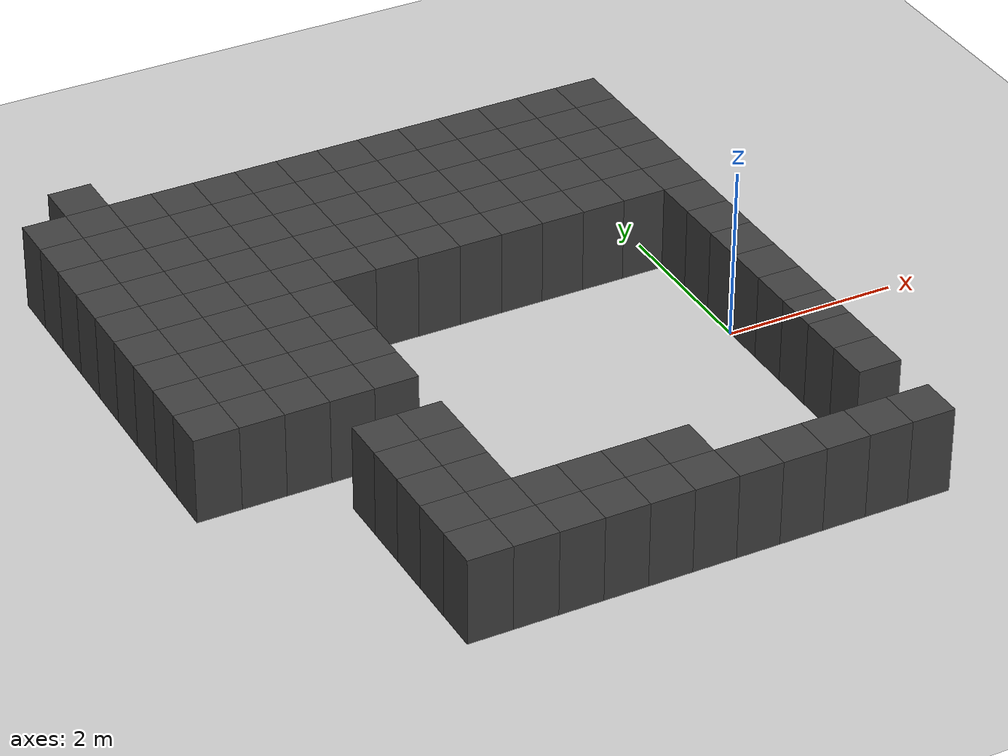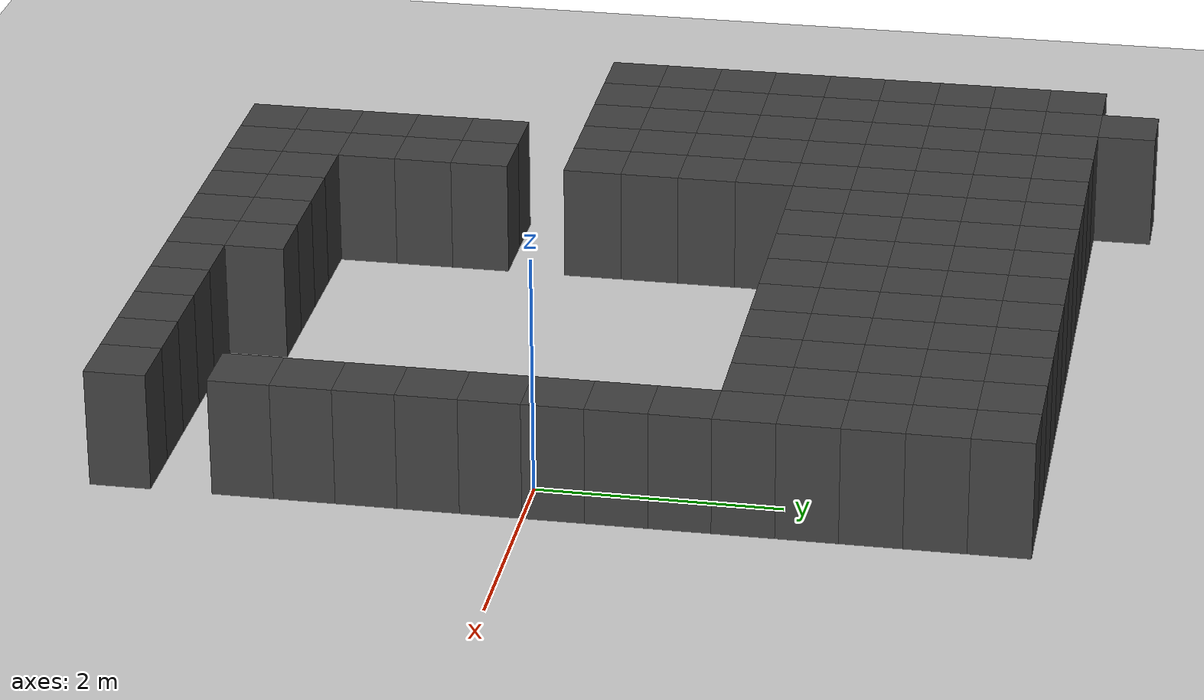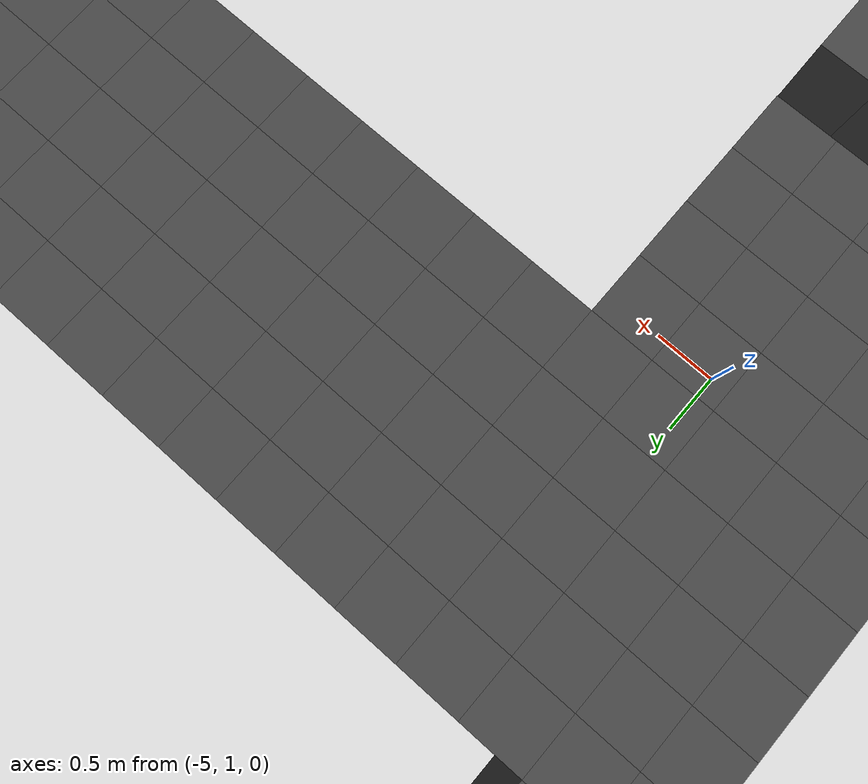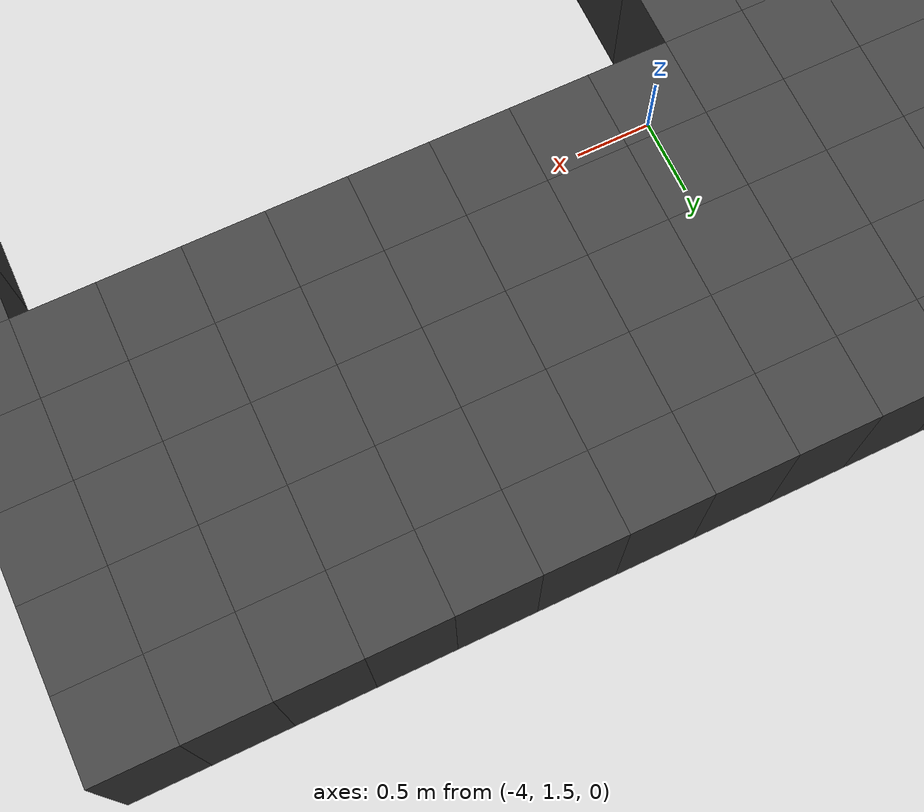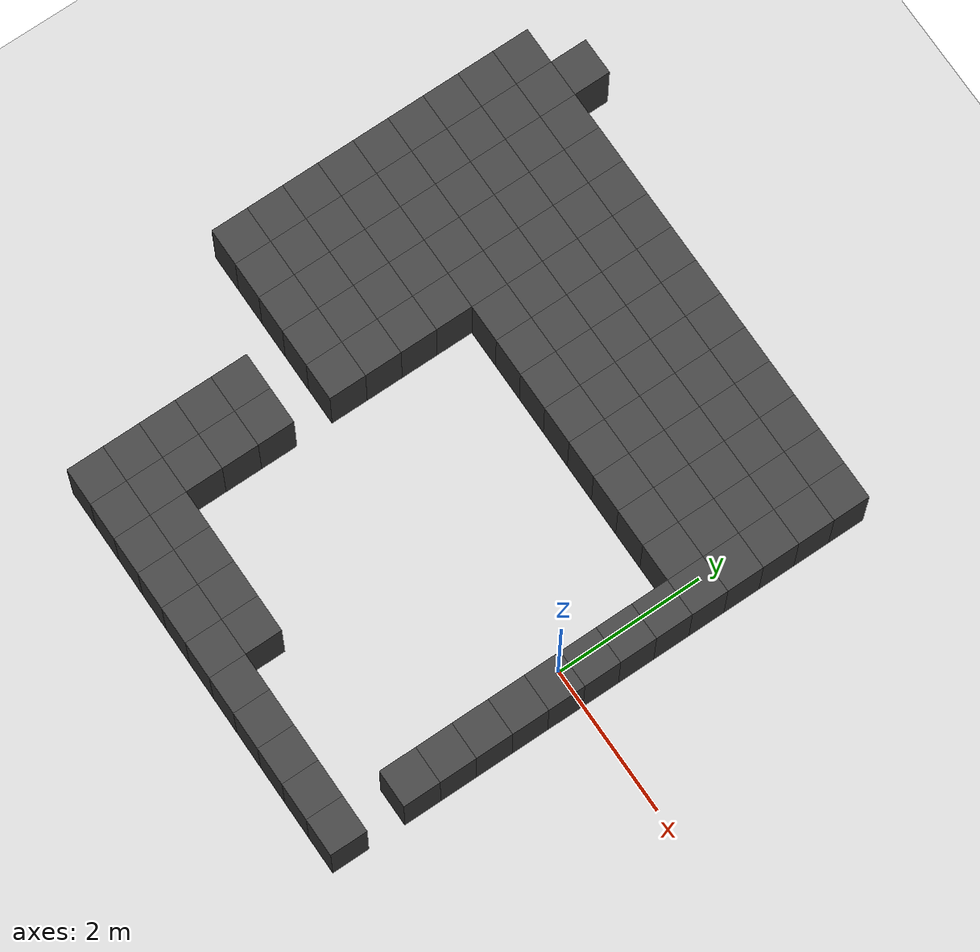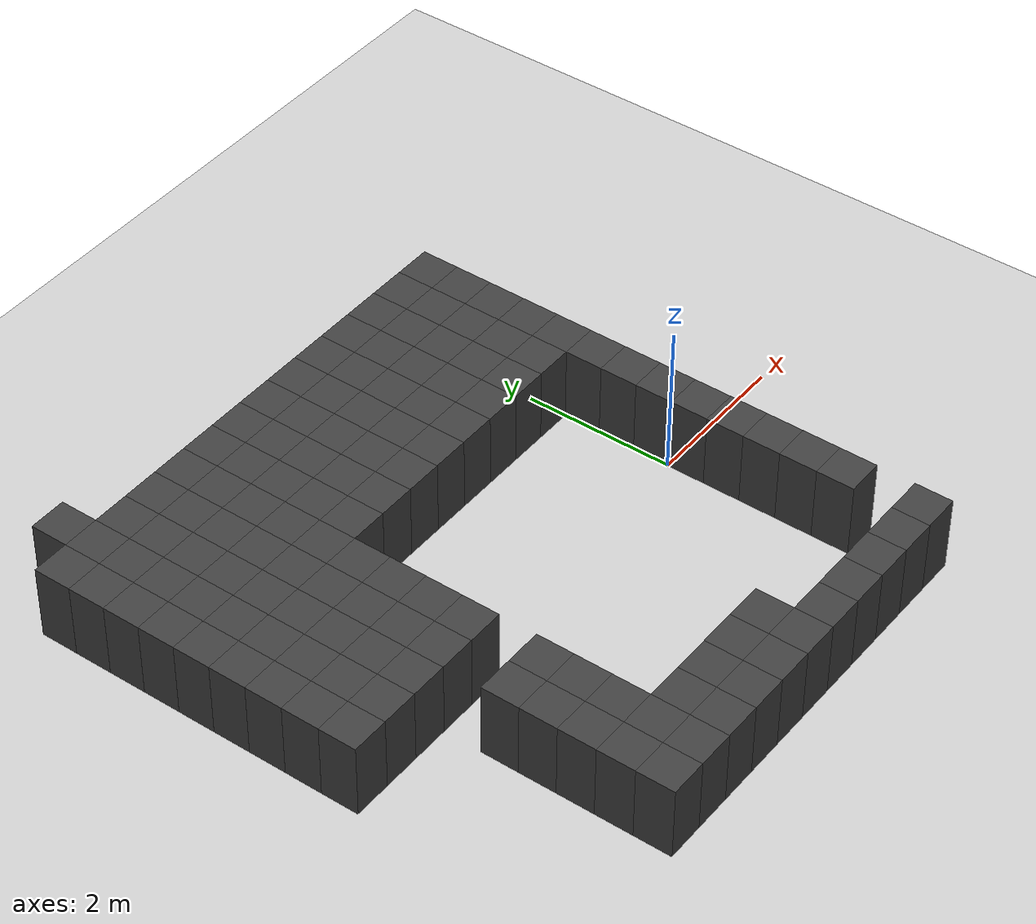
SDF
<sdf version="1.7">
 <world name="map_14510">
  <model name="ground_plane">
   <static>true</static>
   <link name="link">
    <collision name="collision">
     <geometry><plane><normal>0 0 1</normal><size>200 200</size></plane></geometry>
    </collision>
    <visual name="visual">
     <geometry><plane><normal>0 0 1</normal><size>200 200</size></plane></geometry>
     <material><ambient>0.8 0.8 0.8 1</ambient><diffuse>0.8 0.8 0.8 1</diffuse></material>
    </visual>
   </link>
  </model>
  <model name="maze_environment">
   <static>true</static>
   <link name="wall_524">
    <pose>-5.750 4.250 0.500 0 0 0</pose>
    <collision name="col"><geometry><box><size>0.5 0.5 1.0</size></box></geometry></collision>
    <visual name="vis">
     <geometry><box><size>0.5 0.5 1.0</size></box></geometry>
     <material><ambient>0.15 0.15 0.15 1</ambient><diffuse>0.25 0.25 0.25 1</diffuse></material>
    </visual>
   </link>
   <link name="wall_563">
    <pose>-6.250 3.750 0.500 0 0 0</pose>
    <collision name="col"><geometry><box><size>0.5 0.5 1.0</size></box></geometry></collision>
    <visual name="vis">
     <geometry><box><size>0.5 0.5 1.0</size></box></geometry>
     <material><ambient>0.15 0.15 0.15 1</ambient><diffuse>0.25 0.25 0.25 1</diffuse></material>
    </visual>
   </link>
   <link name="wall_564">
    <pose>-5.750 3.750 0.500 0 0 0</pose>
    <collision name="col"><geometry><box><size>0.5 0.5 1.0</size></box></geometry></collision>
    <visual name="vis">
     <geometry><box><size>0.5 0.5 1.0</size></box></geometry>
     <material><ambient>0.15 0.15 0.15 1</ambient><diffuse>0.25 0.25 0.25 1</diffuse></material>
    </visual>
   </link>
   <link name="wall_565">
    <pose>-5.250 3.750 0.500 0 0 0</pose>
    <collision name="col"><geometry><box><size>0.5 0.5 1.0</size></box></geometry></collision>
    <visual name="vis">
     <geometry><box><size>0.5 0.5 1.0</size></box></geometry>
     <material><ambient>0.15 0.15 0.15 1</ambient><diffuse>0.25 0.25 0.25 1</diffuse></material>
    </visual>
   </link>
   <link name="wall_566">
    <pose>-4.750 3.750 0.500 0 0 0</pose>
    <collision name="col"><geometry><box><size>0.5 0.5 1.0</size></box></geometry></collision>
    <visual name="vis">
     <geometry><box><size>0.5 0.5 1.0</size></box></geometry>
     <material><ambient>0.15 0.15 0.15 1</ambient><diffuse>0.25 0.25 0.25 1</diffuse></material>
    </visual>
   </link>
   <link name="wall_567">
    <pose>-4.250 3.750 0.500 0 0 0</pose>
    <collision name="col"><geometry><box><size>0.5 0.5 1.0</size></box></geometry></collision>
    <visual name="vis">
     <geometry><box><size>0.5 0.5 1.0</size></box></geometry>
     <material><ambient>0.15 0.15 0.15 1</ambient><diffuse>0.25 0.25 0.25 1</diffuse></material>
    </visual>
   </link>
   <link name="wall_568">
    <pose>-3.750 3.750 0.500 0 0 0</pose>
    <collision name="col"><geometry><box><size>0.5 0.5 1.0</size></box></geometry></collision>
    <visual name="vis">
     <geometry><box><size>0.5 0.5 1.0</size></box></geometry>
     <material><ambient>0.15 0.15 0.15 1</ambient><diffuse>0.25 0.25 0.25 1</diffuse></material>
    </visual>
   </link>
   <link name="wall_569">
    <pose>-3.250 3.750 0.500 0 0 0</pose>
    <collision name="col"><geometry><box><size>0.5 0.5 1.0</size></box></geometry></collision>
    <visual name="vis">
     <geometry><box><size>0.5 0.5 1.0</size></box></geometry>
     <material><ambient>0.15 0.15 0.15 1</ambient><diffuse>0.25 0.25 0.25 1</diffuse></material>
    </visual>
   </link>
   <link name="wall_570">
    <pose>-2.750 3.750 0.500 0 0 0</pose>
    <collision name="col"><geometry><box><size>0.5 0.5 1.0</size></box></geometry></collision>
    <visual name="vis">
     <geometry><box><size>0.5 0.5 1.0</size></box></geometry>
     <material><ambient>0.15 0.15 0.15 1</ambient><diffuse>0.25 0.25 0.25 1</diffuse></material>
    </visual>
   </link>
   <link name="wall_571">
    <pose>-2.250 3.750 0.500 0 0 0</pose>
    <collision name="col"><geometry><box><size>0.5 0.5 1.0</size></box></geometry></collision>
    <visual name="vis">
     <geometry><box><size>0.5 0.5 1.0</size></box></geometry>
     <material><ambient>0.15 0.15 0.15 1</ambient><diffuse>0.25 0.25 0.25 1</diffuse></material>
    </visual>
   </link>
   <link name="wall_572">
    <pose>-1.750 3.750 0.500 0 0 0</pose>
    <collision name="col"><geometry><box><size>0.5 0.5 1.0</size></box></geometry></collision>
    <visual name="vis">
     <geometry><box><size>0.5 0.5 1.0</size></box></geometry>
     <material><ambient>0.15 0.15 0.15 1</ambient><diffuse>0.25 0.25 0.25 1</diffuse></material>
    </visual>
   </link>
   <link name="wall_573">
    <pose>-1.250 3.750 0.500 0 0 0</pose>
    <collision name="col"><geometry><box><size>0.5 0.5 1.0</size></box></geometry></collision>
    <visual name="vis">
     <geometry><box><size>0.5 0.5 1.0</size></box></geometry>
     <material><ambient>0.15 0.15 0.15 1</ambient><diffuse>0.25 0.25 0.25 1</diffuse></material>
    </visual>
   </link>
   <link name="wall_574">
    <pose>-0.750 3.750 0.500 0 0 0</pose>
    <collision name="col"><geometry><box><size>0.5 0.5 1.0</size></box></geometry></collision>
    <visual name="vis">
     <geometry><box><size>0.5 0.5 1.0</size></box></geometry>
     <material><ambient>0.15 0.15 0.15 1</ambient><diffuse>0.25 0.25 0.25 1</diffuse></material>
    </visual>
   </link>
   <link name="wall_575">
    <pose>-0.250 3.750 0.500 0 0 0</pose>
    <collision name="col"><geometry><box><size>0.5 0.5 1.0</size></box></geometry></collision>
    <visual name="vis">
     <geometry><box><size>0.5 0.5 1.0</size></box></geometry>
     <material><ambient>0.15 0.15 0.15 1</ambient><diffuse>0.25 0.25 0.25 1</diffuse></material>
    </visual>
   </link>
   <link name="wall_576">
    <pose>0.250 3.750 0.500 0 0 0</pose>
    <collision name="col"><geometry><box><size>0.5 0.5 1.0</size></box></geometry></collision>
    <visual name="vis">
     <geometry><box><size>0.5 0.5 1.0</size></box></geometry>
     <material><ambient>0.15 0.15 0.15 1</ambient><diffuse>0.25 0.25 0.25 1</diffuse></material>
    </visual>
   </link>
   <link name="wall_605">
    <pose>-6.250 3.250 0.500 0 0 0</pose>
    <collision name="col"><geometry><box><size>0.5 0.5 1.0</size></box></geometry></collision>
    <visual name="vis">
     <geometry><box><size>0.5 0.5 1.0</size></box></geometry>
     <material><ambient>0.15 0.15 0.15 1</ambient><diffuse>0.25 0.25 0.25 1</diffuse></material>
    </visual>
   </link>
   <link name="wall_606">
    <pose>-5.750 3.250 0.500 0 0 0</pose>
    <collision name="col"><geometry><box><size>0.5 0.5 1.0</size></box></geometry></collision>
    <visual name="vis">
     <geometry><box><size>0.5 0.5 1.0</size></box></geometry>
     <material><ambient>0.15 0.15 0.15 1</ambient><diffuse>0.25 0.25 0.25 1</diffuse></material>
    </visual>
   </link>
   <link name="wall_607">
    <pose>-5.250 3.250 0.500 0 0 0</pose>
    <collision name="col"><geometry><box><size>0.5 0.5 1.0</size></box></geometry></collision>
    <visual name="vis">
     <geometry><box><size>0.5 0.5 1.0</size></box></geometry>
     <material><ambient>0.15 0.15 0.15 1</ambient><diffuse>0.25 0.25 0.25 1</diffuse></material>
    </visual>
   </link>
   <link name="wall_608">
    <pose>-4.750 3.250 0.500 0 0 0</pose>
    <collision name="col"><geometry><box><size>0.5 0.5 1.0</size></box></geometry></collision>
    <visual name="vis">
     <geometry><box><size>0.5 0.5 1.0</size></box></geometry>
     <material><ambient>0.15 0.15 0.15 1</ambient><diffuse>0.25 0.25 0.25 1</diffuse></material>
    </visual>
   </link>
   <link name="wall_609">
    <pose>-4.250 3.250 0.500 0 0 0</pose>
    <collision name="col"><geometry><box><size>0.5 0.5 1.0</size></box></geometry></collision>
    <visual name="vis">
     <geometry><box><size>0.5 0.5 1.0</size></box></geometry>
     <material><ambient>0.15 0.15 0.15 1</ambient><diffuse>0.25 0.25 0.25 1</diffuse></material>
    </visual>
   </link>
   <link name="wall_610">
    <pose>-3.750 3.250 0.500 0 0 0</pose>
    <collision name="col"><geometry><box><size>0.5 0.5 1.0</size></box></geometry></collision>
    <visual name="vis">
     <geometry><box><size>0.5 0.5 1.0</size></box></geometry>
     <material><ambient>0.15 0.15 0.15 1</ambient><diffuse>0.25 0.25 0.25 1</diffuse></material>
    </visual>
   </link>
   <link name="wall_611">
    <pose>-3.250 3.250 0.500 0 0 0</pose>
    <collision name="col"><geometry><box><size>0.5 0.5 1.0</size></box></geometry></collision>
    <visual name="vis">
     <geometry><box><size>0.5 0.5 1.0</size></box></geometry>
     <material><ambient>0.15 0.15 0.15 1</ambient><diffuse>0.25 0.25 0.25 1</diffuse></material>
    </visual>
   </link>
   <link name="wall_612">
    <pose>-2.750 3.250 0.500 0 0 0</pose>
    <collision name="col"><geometry><box><size>0.5 0.5 1.0</size></box></geometry></collision>
    <visual name="vis">
     <geometry><box><size>0.5 0.5 1.0</size></box></geometry>
     <material><ambient>0.15 0.15 0.15 1</ambient><diffuse>0.25 0.25 0.25 1</diffuse></material>
    </visual>
   </link>
   <link name="wall_613">
    <pose>-2.250 3.250 0.500 0 0 0</pose>
    <collision name="col"><geometry><box><size>0.5 0.5 1.0</size></box></geometry></collision>
    <visual name="vis">
     <geometry><box><size>0.5 0.5 1.0</size></box></geometry>
     <material><ambient>0.15 0.15 0.15 1</ambient><diffuse>0.25 0.25 0.25 1</diffuse></material>
    </visual>
   </link>
   <link name="wall_614">
    <pose>-1.750 3.250 0.500 0 0 0</pose>
    <collision name="col"><geometry><box><size>0.5 0.5 1.0</size></box></geometry></collision>
    <visual name="vis">
     <geometry><box><size>0.5 0.5 1.0</size></box></geometry>
     <material><ambient>0.15 0.15 0.15 1</ambient><diffuse>0.25 0.25 0.25 1</diffuse></material>
    </visual>
   </link>
   <link name="wall_615">
    <pose>-1.250 3.250 0.500 0 0 0</pose>
    <collision name="col"><geometry><box><size>0.5 0.5 1.0</size></box></geometry></collision>
    <visual name="vis">
     <geometry><box><size>0.5 0.5 1.0</size></box></geometry>
     <material><ambient>0.15 0.15 0.15 1</ambient><diffuse>0.25 0.25 0.25 1</diffuse></material>
    </visual>
   </link>
   <link name="wall_616">
    <pose>-0.750 3.250 0.500 0 0 0</pose>
    <collision name="col"><geometry><box><size>0.5 0.5 1.0</size></box></geometry></collision>
    <visual name="vis">
     <geometry><box><size>0.5 0.5 1.0</size></box></geometry>
     <material><ambient>0.15 0.15 0.15 1</ambient><diffuse>0.25 0.25 0.25 1</diffuse></material>
    </visual>
   </link>
   <link name="wall_617">
    <pose>-0.250 3.250 0.500 0 0 0</pose>
    <collision name="col"><geometry><box><size>0.5 0.5 1.0</size></box></geometry></collision>
    <visual name="vis">
     <geometry><box><size>0.5 0.5 1.0</size></box></geometry>
     <material><ambient>0.15 0.15 0.15 1</ambient><diffuse>0.25 0.25 0.25 1</diffuse></material>
    </visual>
   </link>
   <link name="wall_618">
    <pose>0.250 3.250 0.500 0 0 0</pose>
    <collision name="col"><geometry><box><size>0.5 0.5 1.0</size></box></geometry></collision>
    <visual name="vis">
     <geometry><box><size>0.5 0.5 1.0</size></box></geometry>
     <material><ambient>0.15 0.15 0.15 1</ambient><diffuse>0.25 0.25 0.25 1</diffuse></material>
    </visual>
   </link>
   <link name="wall_645">
    <pose>-6.250 2.750 0.500 0 0 0</pose>
    <collision name="col"><geometry><box><size>0.5 0.5 1.0</size></box></geometry></collision>
    <visual name="vis">
     <geometry><box><size>0.5 0.5 1.0</size></box></geometry>
     <material><ambient>0.15 0.15 0.15 1</ambient><diffuse>0.25 0.25 0.25 1</diffuse></material>
    </visual>
   </link>
   <link name="wall_646">
    <pose>-5.750 2.750 0.500 0 0 0</pose>
    <collision name="col"><geometry><box><size>0.5 0.5 1.0</size></box></geometry></collision>
    <visual name="vis">
     <geometry><box><size>0.5 0.5 1.0</size></box></geometry>
     <material><ambient>0.15 0.15 0.15 1</ambient><diffuse>0.25 0.25 0.25 1</diffuse></material>
    </visual>
   </link>
   <link name="wall_647">
    <pose>-5.250 2.750 0.500 0 0 0</pose>
    <collision name="col"><geometry><box><size>0.5 0.5 1.0</size></box></geometry></collision>
    <visual name="vis">
     <geometry><box><size>0.5 0.5 1.0</size></box></geometry>
     <material><ambient>0.15 0.15 0.15 1</ambient><diffuse>0.25 0.25 0.25 1</diffuse></material>
    </visual>
   </link>
   <link name="wall_648">
    <pose>-4.750 2.750 0.500 0 0 0</pose>
    <collision name="col"><geometry><box><size>0.5 0.5 1.0</size></box></geometry></collision>
    <visual name="vis">
     <geometry><box><size>0.5 0.5 1.0</size></box></geometry>
     <material><ambient>0.15 0.15 0.15 1</ambient><diffuse>0.25 0.25 0.25 1</diffuse></material>
    </visual>
   </link>
   <link name="wall_649">
    <pose>-4.250 2.750 0.500 0 0 0</pose>
    <collision name="col"><geometry><box><size>0.5 0.5 1.0</size></box></geometry></collision>
    <visual name="vis">
     <geometry><box><size>0.5 0.5 1.0</size></box></geometry>
     <material><ambient>0.15 0.15 0.15 1</ambient><diffuse>0.25 0.25 0.25 1</diffuse></material>
    </visual>
   </link>
   <link name="wall_650">
    <pose>-3.750 2.750 0.500 0 0 0</pose>
    <collision name="col"><geometry><box><size>0.5 0.5 1.0</size></box></geometry></collision>
    <visual name="vis">
     <geometry><box><size>0.5 0.5 1.0</size></box></geometry>
     <material><ambient>0.15 0.15 0.15 1</ambient><diffuse>0.25 0.25 0.25 1</diffuse></material>
    </visual>
   </link>
   <link name="wall_651">
    <pose>-3.250 2.750 0.500 0 0 0</pose>
    <collision name="col"><geometry><box><size>0.5 0.5 1.0</size></box></geometry></collision>
    <visual name="vis">
     <geometry><box><size>0.5 0.5 1.0</size></box></geometry>
     <material><ambient>0.15 0.15 0.15 1</ambient><diffuse>0.25 0.25 0.25 1</diffuse></material>
    </visual>
   </link>
   <link name="wall_652">
    <pose>-2.750 2.750 0.500 0 0 0</pose>
    <collision name="col"><geometry><box><size>0.5 0.5 1.0</size></box></geometry></collision>
    <visual name="vis">
     <geometry><box><size>0.5 0.5 1.0</size></box></geometry>
     <material><ambient>0.15 0.15 0.15 1</ambient><diffuse>0.25 0.25 0.25 1</diffuse></material>
    </visual>
   </link>
   <link name="wall_653">
    <pose>-2.250 2.750 0.500 0 0 0</pose>
    <collision name="col"><geometry><box><size>0.5 0.5 1.0</size></box></geometry></collision>
    <visual name="vis">
     <geometry><box><size>0.5 0.5 1.0</size></box></geometry>
     <material><ambient>0.15 0.15 0.15 1</ambient><diffuse>0.25 0.25 0.25 1</diffuse></material>
    </visual>
   </link>
   <link name="wall_654">
    <pose>-1.750 2.750 0.500 0 0 0</pose>
    <collision name="col"><geometry><box><size>0.5 0.5 1.0</size></box></geometry></collision>
    <visual name="vis">
     <geometry><box><size>0.5 0.5 1.0</size></box></geometry>
     <material><ambient>0.15 0.15 0.15 1</ambient><diffuse>0.25 0.25 0.25 1</diffuse></material>
    </visual>
   </link>
   <link name="wall_655">
    <pose>-1.250 2.750 0.500 0 0 0</pose>
    <collision name="col"><geometry><box><size>0.5 0.5 1.0</size></box></geometry></collision>
    <visual name="vis">
     <geometry><box><size>0.5 0.5 1.0</size></box></geometry>
     <material><ambient>0.15 0.15 0.15 1</ambient><diffuse>0.25 0.25 0.25 1</diffuse></material>
    </visual>
   </link>
   <link name="wall_656">
    <pose>-0.750 2.750 0.500 0 0 0</pose>
    <collision name="col"><geometry><box><size>0.5 0.5 1.0</size></box></geometry></collision>
    <visual name="vis">
     <geometry><box><size>0.5 0.5 1.0</size></box></geometry>
     <material><ambient>0.15 0.15 0.15 1</ambient><diffuse>0.25 0.25 0.25 1</diffuse></material>
    </visual>
   </link>
   <link name="wall_657">
    <pose>-0.250 2.750 0.500 0 0 0</pose>
    <collision name="col"><geometry><box><size>0.5 0.5 1.0</size></box></geometry></collision>
    <visual name="vis">
     <geometry><box><size>0.5 0.5 1.0</size></box></geometry>
     <material><ambient>0.15 0.15 0.15 1</ambient><diffuse>0.25 0.25 0.25 1</diffuse></material>
    </visual>
   </link>
   <link name="wall_658">
    <pose>0.250 2.750 0.500 0 0 0</pose>
    <collision name="col"><geometry><box><size>0.5 0.5 1.0</size></box></geometry></collision>
    <visual name="vis">
     <geometry><box><size>0.5 0.5 1.0</size></box></geometry>
     <material><ambient>0.15 0.15 0.15 1</ambient><diffuse>0.25 0.25 0.25 1</diffuse></material>
    </visual>
   </link>
   <link name="wall_683">
    <pose>-6.250 2.250 0.500 0 0 0</pose>
    <collision name="col"><geometry><box><size>0.5 0.5 1.0</size></box></geometry></collision>
    <visual name="vis">
     <geometry><box><size>0.5 0.5 1.0</size></box></geometry>
     <material><ambient>0.15 0.15 0.15 1</ambient><diffuse>0.25 0.25 0.25 1</diffuse></material>
    </visual>
   </link>
   <link name="wall_684">
    <pose>-5.750 2.250 0.500 0 0 0</pose>
    <collision name="col"><geometry><box><size>0.5 0.5 1.0</size></box></geometry></collision>
    <visual name="vis">
     <geometry><box><size>0.5 0.5 1.0</size></box></geometry>
     <material><ambient>0.15 0.15 0.15 1</ambient><diffuse>0.25 0.25 0.25 1</diffuse></material>
    </visual>
   </link>
   <link name="wall_685">
    <pose>-5.250 2.250 0.500 0 0 0</pose>
    <collision name="col"><geometry><box><size>0.5 0.5 1.0</size></box></geometry></collision>
    <visual name="vis">
     <geometry><box><size>0.5 0.5 1.0</size></box></geometry>
     <material><ambient>0.15 0.15 0.15 1</ambient><diffuse>0.25 0.25 0.25 1</diffuse></material>
    </visual>
   </link>
   <link name="wall_686">
    <pose>-4.750 2.250 0.500 0 0 0</pose>
    <collision name="col"><geometry><box><size>0.5 0.5 1.0</size></box></geometry></collision>
    <visual name="vis">
     <geometry><box><size>0.5 0.5 1.0</size></box></geometry>
     <material><ambient>0.15 0.15 0.15 1</ambient><diffuse>0.25 0.25 0.25 1</diffuse></material>
    </visual>
   </link>
   <link name="wall_687">
    <pose>-4.250 2.250 0.500 0 0 0</pose>
    <collision name="col"><geometry><box><size>0.5 0.5 1.0</size></box></geometry></collision>
    <visual name="vis">
     <geometry><box><size>0.5 0.5 1.0</size></box></geometry>
     <material><ambient>0.15 0.15 0.15 1</ambient><diffuse>0.25 0.25 0.25 1</diffuse></material>
    </visual>
   </link>
   <link name="wall_688">
    <pose>-3.750 2.250 0.500 0 0 0</pose>
    <collision name="col"><geometry><box><size>0.5 0.5 1.0</size></box></geometry></collision>
    <visual name="vis">
     <geometry><box><size>0.5 0.5 1.0</size></box></geometry>
     <material><ambient>0.15 0.15 0.15 1</ambient><diffuse>0.25 0.25 0.25 1</diffuse></material>
    </visual>
   </link>
   <link name="wall_689">
    <pose>-3.250 2.250 0.500 0 0 0</pose>
    <collision name="col"><geometry><box><size>0.5 0.5 1.0</size></box></geometry></collision>
    <visual name="vis">
     <geometry><box><size>0.5 0.5 1.0</size></box></geometry>
     <material><ambient>0.15 0.15 0.15 1</ambient><diffuse>0.25 0.25 0.25 1</diffuse></material>
    </visual>
   </link>
   <link name="wall_690">
    <pose>-2.750 2.250 0.500 0 0 0</pose>
    <collision name="col"><geometry><box><size>0.5 0.5 1.0</size></box></geometry></collision>
    <visual name="vis">
     <geometry><box><size>0.5 0.5 1.0</size></box></geometry>
     <material><ambient>0.15 0.15 0.15 1</ambient><diffuse>0.25 0.25 0.25 1</diffuse></material>
    </visual>
   </link>
   <link name="wall_691">
    <pose>-2.250 2.250 0.500 0 0 0</pose>
    <collision name="col"><geometry><box><size>0.5 0.5 1.0</size></box></geometry></collision>
    <visual name="vis">
     <geometry><box><size>0.5 0.5 1.0</size></box></geometry>
     <material><ambient>0.15 0.15 0.15 1</ambient><diffuse>0.25 0.25 0.25 1</diffuse></material>
    </visual>
   </link>
   <link name="wall_692">
    <pose>-1.750 2.250 0.500 0 0 0</pose>
    <collision name="col"><geometry><box><size>0.5 0.5 1.0</size></box></geometry></collision>
    <visual name="vis">
     <geometry><box><size>0.5 0.5 1.0</size></box></geometry>
     <material><ambient>0.15 0.15 0.15 1</ambient><diffuse>0.25 0.25 0.25 1</diffuse></material>
    </visual>
   </link>
   <link name="wall_693">
    <pose>-1.250 2.250 0.500 0 0 0</pose>
    <collision name="col"><geometry><box><size>0.5 0.5 1.0</size></box></geometry></collision>
    <visual name="vis">
     <geometry><box><size>0.5 0.5 1.0</size></box></geometry>
     <material><ambient>0.15 0.15 0.15 1</ambient><diffuse>0.25 0.25 0.25 1</diffuse></material>
    </visual>
   </link>
   <link name="wall_694">
    <pose>-0.750 2.250 0.500 0 0 0</pose>
    <collision name="col"><geometry><box><size>0.5 0.5 1.0</size></box></geometry></collision>
    <visual name="vis">
     <geometry><box><size>0.5 0.5 1.0</size></box></geometry>
     <material><ambient>0.15 0.15 0.15 1</ambient><diffuse>0.25 0.25 0.25 1</diffuse></material>
    </visual>
   </link>
   <link name="wall_695">
    <pose>-0.250 2.250 0.500 0 0 0</pose>
    <collision name="col"><geometry><box><size>0.5 0.5 1.0</size></box></geometry></collision>
    <visual name="vis">
     <geometry><box><size>0.5 0.5 1.0</size></box></geometry>
     <material><ambient>0.15 0.15 0.15 1</ambient><diffuse>0.25 0.25 0.25 1</diffuse></material>
    </visual>
   </link>
   <link name="wall_696">
    <pose>0.250 2.250 0.500 0 0 0</pose>
    <collision name="col"><geometry><box><size>0.5 0.5 1.0</size></box></geometry></collision>
    <visual name="vis">
     <geometry><box><size>0.5 0.5 1.0</size></box></geometry>
     <material><ambient>0.15 0.15 0.15 1</ambient><diffuse>0.25 0.25 0.25 1</diffuse></material>
    </visual>
   </link>
   <link name="wall_721">
    <pose>-6.250 1.750 0.500 0 0 0</pose>
    <collision name="col"><geometry><box><size>0.5 0.5 1.0</size></box></geometry></collision>
    <visual name="vis">
     <geometry><box><size>0.5 0.5 1.0</size></box></geometry>
     <material><ambient>0.15 0.15 0.15 1</ambient><diffuse>0.25 0.25 0.25 1</diffuse></material>
    </visual>
   </link>
   <link name="wall_722">
    <pose>-5.750 1.750 0.500 0 0 0</pose>
    <collision name="col"><geometry><box><size>0.5 0.5 1.0</size></box></geometry></collision>
    <visual name="vis">
     <geometry><box><size>0.5 0.5 1.0</size></box></geometry>
     <material><ambient>0.15 0.15 0.15 1</ambient><diffuse>0.25 0.25 0.25 1</diffuse></material>
    </visual>
   </link>
   <link name="wall_723">
    <pose>-5.250 1.750 0.500 0 0 0</pose>
    <collision name="col"><geometry><box><size>0.5 0.5 1.0</size></box></geometry></collision>
    <visual name="vis">
     <geometry><box><size>0.5 0.5 1.0</size></box></geometry>
     <material><ambient>0.15 0.15 0.15 1</ambient><diffuse>0.25 0.25 0.25 1</diffuse></material>
    </visual>
   </link>
   <link name="wall_724">
    <pose>-4.750 1.750 0.500 0 0 0</pose>
    <collision name="col"><geometry><box><size>0.5 0.5 1.0</size></box></geometry></collision>
    <visual name="vis">
     <geometry><box><size>0.5 0.5 1.0</size></box></geometry>
     <material><ambient>0.15 0.15 0.15 1</ambient><diffuse>0.25 0.25 0.25 1</diffuse></material>
    </visual>
   </link>
   <link name="wall_725">
    <pose>-4.250 1.750 0.500 0 0 0</pose>
    <collision name="col"><geometry><box><size>0.5 0.5 1.0</size></box></geometry></collision>
    <visual name="vis">
     <geometry><box><size>0.5 0.5 1.0</size></box></geometry>
     <material><ambient>0.15 0.15 0.15 1</ambient><diffuse>0.25 0.25 0.25 1</diffuse></material>
    </visual>
   </link>
   <link name="wall_726">
    <pose>-3.750 1.750 0.500 0 0 0</pose>
    <collision name="col"><geometry><box><size>0.5 0.5 1.0</size></box></geometry></collision>
    <visual name="vis">
     <geometry><box><size>0.5 0.5 1.0</size></box></geometry>
     <material><ambient>0.15 0.15 0.15 1</ambient><diffuse>0.25 0.25 0.25 1</diffuse></material>
    </visual>
   </link>
   <link name="wall_727">
    <pose>-3.250 1.750 0.500 0 0 0</pose>
    <collision name="col"><geometry><box><size>0.5 0.5 1.0</size></box></geometry></collision>
    <visual name="vis">
     <geometry><box><size>0.5 0.5 1.0</size></box></geometry>
     <material><ambient>0.15 0.15 0.15 1</ambient><diffuse>0.25 0.25 0.25 1</diffuse></material>
    </visual>
   </link>
   <link name="wall_728">
    <pose>-2.750 1.750 0.500 0 0 0</pose>
    <collision name="col"><geometry><box><size>0.5 0.5 1.0</size></box></geometry></collision>
    <visual name="vis">
     <geometry><box><size>0.5 0.5 1.0</size></box></geometry>
     <material><ambient>0.15 0.15 0.15 1</ambient><diffuse>0.25 0.25 0.25 1</diffuse></material>
    </visual>
   </link>
   <link name="wall_729">
    <pose>-2.250 1.750 0.500 0 0 0</pose>
    <collision name="col"><geometry><box><size>0.5 0.5 1.0</size></box></geometry></collision>
    <visual name="vis">
     <geometry><box><size>0.5 0.5 1.0</size></box></geometry>
     <material><ambient>0.15 0.15 0.15 1</ambient><diffuse>0.25 0.25 0.25 1</diffuse></material>
    </visual>
   </link>
   <link name="wall_730">
    <pose>-1.750 1.750 0.500 0 0 0</pose>
    <collision name="col"><geometry><box><size>0.5 0.5 1.0</size></box></geometry></collision>
    <visual name="vis">
     <geometry><box><size>0.5 0.5 1.0</size></box></geometry>
     <material><ambient>0.15 0.15 0.15 1</ambient><diffuse>0.25 0.25 0.25 1</diffuse></material>
    </visual>
   </link>
   <link name="wall_731">
    <pose>-1.250 1.750 0.500 0 0 0</pose>
    <collision name="col"><geometry><box><size>0.5 0.5 1.0</size></box></geometry></collision>
    <visual name="vis">
     <geometry><box><size>0.5 0.5 1.0</size></box></geometry>
     <material><ambient>0.15 0.15 0.15 1</ambient><diffuse>0.25 0.25 0.25 1</diffuse></material>
    </visual>
   </link>
   <link name="wall_732">
    <pose>-0.750 1.750 0.500 0 0 0</pose>
    <collision name="col"><geometry><box><size>0.5 0.5 1.0</size></box></geometry></collision>
    <visual name="vis">
     <geometry><box><size>0.5 0.5 1.0</size></box></geometry>
     <material><ambient>0.15 0.15 0.15 1</ambient><diffuse>0.25 0.25 0.25 1</diffuse></material>
    </visual>
   </link>
   <link name="wall_733">
    <pose>-0.250 1.750 0.500 0 0 0</pose>
    <collision name="col"><geometry><box><size>0.5 0.5 1.0</size></box></geometry></collision>
    <visual name="vis">
     <geometry><box><size>0.5 0.5 1.0</size></box></geometry>
     <material><ambient>0.15 0.15 0.15 1</ambient><diffuse>0.25 0.25 0.25 1</diffuse></material>
    </visual>
   </link>
   <link name="wall_734">
    <pose>0.250 1.750 0.500 0 0 0</pose>
    <collision name="col"><geometry><box><size>0.5 0.5 1.0</size></box></geometry></collision>
    <visual name="vis">
     <geometry><box><size>0.5 0.5 1.0</size></box></geometry>
     <material><ambient>0.15 0.15 0.15 1</ambient><diffuse>0.25 0.25 0.25 1</diffuse></material>
    </visual>
   </link>
   <link name="wall_759">
    <pose>-6.250 1.250 0.500 0 0 0</pose>
    <collision name="col"><geometry><box><size>0.5 0.5 1.0</size></box></geometry></collision>
    <visual name="vis">
     <geometry><box><size>0.5 0.5 1.0</size></box></geometry>
     <material><ambient>0.15 0.15 0.15 1</ambient><diffuse>0.25 0.25 0.25 1</diffuse></material>
    </visual>
   </link>
   <link name="wall_760">
    <pose>-5.750 1.250 0.500 0 0 0</pose>
    <collision name="col"><geometry><box><size>0.5 0.5 1.0</size></box></geometry></collision>
    <visual name="vis">
     <geometry><box><size>0.5 0.5 1.0</size></box></geometry>
     <material><ambient>0.15 0.15 0.15 1</ambient><diffuse>0.25 0.25 0.25 1</diffuse></material>
    </visual>
   </link>
   <link name="wall_761">
    <pose>-5.250 1.250 0.500 0 0 0</pose>
    <collision name="col"><geometry><box><size>0.5 0.5 1.0</size></box></geometry></collision>
    <visual name="vis">
     <geometry><box><size>0.5 0.5 1.0</size></box></geometry>
     <material><ambient>0.15 0.15 0.15 1</ambient><diffuse>0.25 0.25 0.25 1</diffuse></material>
    </visual>
   </link>
   <link name="wall_762">
    <pose>-4.750 1.250 0.500 0 0 0</pose>
    <collision name="col"><geometry><box><size>0.5 0.5 1.0</size></box></geometry></collision>
    <visual name="vis">
     <geometry><box><size>0.5 0.5 1.0</size></box></geometry>
     <material><ambient>0.15 0.15 0.15 1</ambient><diffuse>0.25 0.25 0.25 1</diffuse></material>
    </visual>
   </link>
   <link name="wall_763">
    <pose>-4.250 1.250 0.500 0 0 0</pose>
    <collision name="col"><geometry><box><size>0.5 0.5 1.0</size></box></geometry></collision>
    <visual name="vis">
     <geometry><box><size>0.5 0.5 1.0</size></box></geometry>
     <material><ambient>0.15 0.15 0.15 1</ambient><diffuse>0.25 0.25 0.25 1</diffuse></material>
    </visual>
   </link>
   <link name="wall_764">
    <pose>0.250 1.250 0.500 0 0 0</pose>
    <collision name="col"><geometry><box><size>0.5 0.5 1.0</size></box></geometry></collision>
    <visual name="vis">
     <geometry><box><size>0.5 0.5 1.0</size></box></geometry>
     <material><ambient>0.15 0.15 0.15 1</ambient><diffuse>0.25 0.25 0.25 1</diffuse></material>
    </visual>
   </link>
   <link name="wall_796">
    <pose>-6.250 0.750 0.500 0 0 0</pose>
    <collision name="col"><geometry><box><size>0.5 0.5 1.0</size></box></geometry></collision>
    <visual name="vis">
     <geometry><box><size>0.5 0.5 1.0</size></box></geometry>
     <material><ambient>0.15 0.15 0.15 1</ambient><diffuse>0.25 0.25 0.25 1</diffuse></material>
    </visual>
   </link>
   <link name="wall_797">
    <pose>-5.750 0.750 0.500 0 0 0</pose>
    <collision name="col"><geometry><box><size>0.5 0.5 1.0</size></box></geometry></collision>
    <visual name="vis">
     <geometry><box><size>0.5 0.5 1.0</size></box></geometry>
     <material><ambient>0.15 0.15 0.15 1</ambient><diffuse>0.25 0.25 0.25 1</diffuse></material>
    </visual>
   </link>
   <link name="wall_798">
    <pose>-5.250 0.750 0.500 0 0 0</pose>
    <collision name="col"><geometry><box><size>0.5 0.5 1.0</size></box></geometry></collision>
    <visual name="vis">
     <geometry><box><size>0.5 0.5 1.0</size></box></geometry>
     <material><ambient>0.15 0.15 0.15 1</ambient><diffuse>0.25 0.25 0.25 1</diffuse></material>
    </visual>
   </link>
   <link name="wall_799">
    <pose>-4.750 0.750 0.500 0 0 0</pose>
    <collision name="col"><geometry><box><size>0.5 0.5 1.0</size></box></geometry></collision>
    <visual name="vis">
     <geometry><box><size>0.5 0.5 1.0</size></box></geometry>
     <material><ambient>0.15 0.15 0.15 1</ambient><diffuse>0.25 0.25 0.25 1</diffuse></material>
    </visual>
   </link>
   <link name="wall_800">
    <pose>-4.250 0.750 0.500 0 0 0</pose>
    <collision name="col"><geometry><box><size>0.5 0.5 1.0</size></box></geometry></collision>
    <visual name="vis">
     <geometry><box><size>0.5 0.5 1.0</size></box></geometry>
     <material><ambient>0.15 0.15 0.15 1</ambient><diffuse>0.25 0.25 0.25 1</diffuse></material>
    </visual>
   </link>
   <link name="wall_801">
    <pose>0.250 0.750 0.500 0 0 0</pose>
    <collision name="col"><geometry><box><size>0.5 0.5 1.0</size></box></geometry></collision>
    <visual name="vis">
     <geometry><box><size>0.5 0.5 1.0</size></box></geometry>
     <material><ambient>0.15 0.15 0.15 1</ambient><diffuse>0.25 0.25 0.25 1</diffuse></material>
    </visual>
   </link>
   <link name="wall_833">
    <pose>-6.250 0.250 0.500 0 0 0</pose>
    <collision name="col"><geometry><box><size>0.5 0.5 1.0</size></box></geometry></collision>
    <visual name="vis">
     <geometry><box><size>0.5 0.5 1.0</size></box></geometry>
     <material><ambient>0.15 0.15 0.15 1</ambient><diffuse>0.25 0.25 0.25 1</diffuse></material>
    </visual>
   </link>
   <link name="wall_834">
    <pose>-5.750 0.250 0.500 0 0 0</pose>
    <collision name="col"><geometry><box><size>0.5 0.5 1.0</size></box></geometry></collision>
    <visual name="vis">
     <geometry><box><size>0.5 0.5 1.0</size></box></geometry>
     <material><ambient>0.15 0.15 0.15 1</ambient><diffuse>0.25 0.25 0.25 1</diffuse></material>
    </visual>
   </link>
   <link name="wall_835">
    <pose>-5.250 0.250 0.500 0 0 0</pose>
    <collision name="col"><geometry><box><size>0.5 0.5 1.0</size></box></geometry></collision>
    <visual name="vis">
     <geometry><box><size>0.5 0.5 1.0</size></box></geometry>
     <material><ambient>0.15 0.15 0.15 1</ambient><diffuse>0.25 0.25 0.25 1</diffuse></material>
    </visual>
   </link>
   <link name="wall_836">
    <pose>-4.750 0.250 0.500 0 0 0</pose>
    <collision name="col"><geometry><box><size>0.5 0.5 1.0</size></box></geometry></collision>
    <visual name="vis">
     <geometry><box><size>0.5 0.5 1.0</size></box></geometry>
     <material><ambient>0.15 0.15 0.15 1</ambient><diffuse>0.25 0.25 0.25 1</diffuse></material>
    </visual>
   </link>
   <link name="wall_837">
    <pose>-4.250 0.250 0.500 0 0 0</pose>
    <collision name="col"><geometry><box><size>0.5 0.5 1.0</size></box></geometry></collision>
    <visual name="vis">
     <geometry><box><size>0.5 0.5 1.0</size></box></geometry>
     <material><ambient>0.15 0.15 0.15 1</ambient><diffuse>0.25 0.25 0.25 1</diffuse></material>
    </visual>
   </link>
   <link name="wall_838">
    <pose>0.250 0.250 0.500 0 0 0</pose>
    <collision name="col"><geometry><box><size>0.5 0.5 1.0</size></box></geometry></collision>
    <visual name="vis">
     <geometry><box><size>0.5 0.5 1.0</size></box></geometry>
     <material><ambient>0.15 0.15 0.15 1</ambient><diffuse>0.25 0.25 0.25 1</diffuse></material>
    </visual>
   </link>
   <link name="wall_874">
    <pose>-6.250 -0.250 0.500 0 0 0</pose>
    <collision name="col"><geometry><box><size>0.5 0.5 1.0</size></box></geometry></collision>
    <visual name="vis">
     <geometry><box><size>0.5 0.5 1.0</size></box></geometry>
     <material><ambient>0.15 0.15 0.15 1</ambient><diffuse>0.25 0.25 0.25 1</diffuse></material>
    </visual>
   </link>
   <link name="wall_875">
    <pose>-5.750 -0.250 0.500 0 0 0</pose>
    <collision name="col"><geometry><box><size>0.5 0.5 1.0</size></box></geometry></collision>
    <visual name="vis">
     <geometry><box><size>0.5 0.5 1.0</size></box></geometry>
     <material><ambient>0.15 0.15 0.15 1</ambient><diffuse>0.25 0.25 0.25 1</diffuse></material>
    </visual>
   </link>
   <link name="wall_876">
    <pose>-5.250 -0.250 0.500 0 0 0</pose>
    <collision name="col"><geometry><box><size>0.5 0.5 1.0</size></box></geometry></collision>
    <visual name="vis">
     <geometry><box><size>0.5 0.5 1.0</size></box></geometry>
     <material><ambient>0.15 0.15 0.15 1</ambient><diffuse>0.25 0.25 0.25 1</diffuse></material>
    </visual>
   </link>
   <link name="wall_877">
    <pose>-4.750 -0.250 0.500 0 0 0</pose>
    <collision name="col"><geometry><box><size>0.5 0.5 1.0</size></box></geometry></collision>
    <visual name="vis">
     <geometry><box><size>0.5 0.5 1.0</size></box></geometry>
     <material><ambient>0.15 0.15 0.15 1</ambient><diffuse>0.25 0.25 0.25 1</diffuse></material>
    </visual>
   </link>
   <link name="wall_878">
    <pose>-4.250 -0.250 0.500 0 0 0</pose>
    <collision name="col"><geometry><box><size>0.5 0.5 1.0</size></box></geometry></collision>
    <visual name="vis">
     <geometry><box><size>0.5 0.5 1.0</size></box></geometry>
     <material><ambient>0.15 0.15 0.15 1</ambient><diffuse>0.25 0.25 0.25 1</diffuse></material>
    </visual>
   </link>
   <link name="wall_879">
    <pose>0.250 -0.250 0.500 0 0 0</pose>
    <collision name="col"><geometry><box><size>0.5 0.5 1.0</size></box></geometry></collision>
    <visual name="vis">
     <geometry><box><size>0.5 0.5 1.0</size></box></geometry>
     <material><ambient>0.15 0.15 0.15 1</ambient><diffuse>0.25 0.25 0.25 1</diffuse></material>
    </visual>
   </link>
   <link name="wall_914">
    <pose>0.250 -0.750 0.500 0 0 0</pose>
    <collision name="col"><geometry><box><size>0.5 0.5 1.0</size></box></geometry></collision>
    <visual name="vis">
     <geometry><box><size>0.5 0.5 1.0</size></box></geometry>
     <material><ambient>0.15 0.15 0.15 1</ambient><diffuse>0.25 0.25 0.25 1</diffuse></material>
    </visual>
   </link>
   <link name="wall_945">
    <pose>-4.750 -1.250 0.500 0 0 0</pose>
    <collision name="col"><geometry><box><size>0.5 0.5 1.0</size></box></geometry></collision>
    <visual name="vis">
     <geometry><box><size>0.5 0.5 1.0</size></box></geometry>
     <material><ambient>0.15 0.15 0.15 1</ambient><diffuse>0.25 0.25 0.25 1</diffuse></material>
    </visual>
   </link>
   <link name="wall_946">
    <pose>-4.250 -1.250 0.500 0 0 0</pose>
    <collision name="col"><geometry><box><size>0.5 0.5 1.0</size></box></geometry></collision>
    <visual name="vis">
     <geometry><box><size>0.5 0.5 1.0</size></box></geometry>
     <material><ambient>0.15 0.15 0.15 1</ambient><diffuse>0.25 0.25 0.25 1</diffuse></material>
    </visual>
   </link>
   <link name="wall_947">
    <pose>0.250 -1.250 0.500 0 0 0</pose>
    <collision name="col"><geometry><box><size>0.5 0.5 1.0</size></box></geometry></collision>
    <visual name="vis">
     <geometry><box><size>0.5 0.5 1.0</size></box></geometry>
     <material><ambient>0.15 0.15 0.15 1</ambient><diffuse>0.25 0.25 0.25 1</diffuse></material>
    </visual>
   </link>
   <link name="wall_978">
    <pose>-4.750 -1.750 0.500 0 0 0</pose>
    <collision name="col"><geometry><box><size>0.5 0.5 1.0</size></box></geometry></collision>
    <visual name="vis">
     <geometry><box><size>0.5 0.5 1.0</size></box></geometry>
     <material><ambient>0.15 0.15 0.15 1</ambient><diffuse>0.25 0.25 0.25 1</diffuse></material>
    </visual>
   </link>
   <link name="wall_979">
    <pose>-4.250 -1.750 0.500 0 0 0</pose>
    <collision name="col"><geometry><box><size>0.5 0.5 1.0</size></box></geometry></collision>
    <visual name="vis">
     <geometry><box><size>0.5 0.5 1.0</size></box></geometry>
     <material><ambient>0.15 0.15 0.15 1</ambient><diffuse>0.25 0.25 0.25 1</diffuse></material>
    </visual>
   </link>
   <link name="wall_980">
    <pose>0.250 -1.750 0.500 0 0 0</pose>
    <collision name="col"><geometry><box><size>0.5 0.5 1.0</size></box></geometry></collision>
    <visual name="vis">
     <geometry><box><size>0.5 0.5 1.0</size></box></geometry>
     <material><ambient>0.15 0.15 0.15 1</ambient><diffuse>0.25 0.25 0.25 1</diffuse></material>
    </visual>
   </link>
   <link name="wall_1005">
    <pose>-4.750 -2.250 0.500 0 0 0</pose>
    <collision name="col"><geometry><box><size>0.5 0.5 1.0</size></box></geometry></collision>
    <visual name="vis">
     <geometry><box><size>0.5 0.5 1.0</size></box></geometry>
     <material><ambient>0.15 0.15 0.15 1</ambient><diffuse>0.25 0.25 0.25 1</diffuse></material>
    </visual>
   </link>
   <link name="wall_1006">
    <pose>-4.250 -2.250 0.500 0 0 0</pose>
    <collision name="col"><geometry><box><size>0.5 0.5 1.0</size></box></geometry></collision>
    <visual name="vis">
     <geometry><box><size>0.5 0.5 1.0</size></box></geometry>
     <material><ambient>0.15 0.15 0.15 1</ambient><diffuse>0.25 0.25 0.25 1</diffuse></material>
    </visual>
   </link>
   <link name="wall_1007">
    <pose>0.250 -2.250 0.500 0 0 0</pose>
    <collision name="col"><geometry><box><size>0.5 0.5 1.0</size></box></geometry></collision>
    <visual name="vis">
     <geometry><box><size>0.5 0.5 1.0</size></box></geometry>
     <material><ambient>0.15 0.15 0.15 1</ambient><diffuse>0.25 0.25 0.25 1</diffuse></material>
    </visual>
   </link>
   <link name="wall_1030">
    <pose>-4.750 -2.750 0.500 0 0 0</pose>
    <collision name="col"><geometry><box><size>0.5 0.5 1.0</size></box></geometry></collision>
    <visual name="vis">
     <geometry><box><size>0.5 0.5 1.0</size></box></geometry>
     <material><ambient>0.15 0.15 0.15 1</ambient><diffuse>0.25 0.25 0.25 1</diffuse></material>
    </visual>
   </link>
   <link name="wall_1031">
    <pose>-4.250 -2.750 0.500 0 0 0</pose>
    <collision name="col"><geometry><box><size>0.5 0.5 1.0</size></box></geometry></collision>
    <visual name="vis">
     <geometry><box><size>0.5 0.5 1.0</size></box></geometry>
     <material><ambient>0.15 0.15 0.15 1</ambient><diffuse>0.25 0.25 0.25 1</diffuse></material>
    </visual>
   </link>
   <link name="wall_1032">
    <pose>-3.750 -2.750 0.500 0 0 0</pose>
    <collision name="col"><geometry><box><size>0.5 0.5 1.0</size></box></geometry></collision>
    <visual name="vis">
     <geometry><box><size>0.5 0.5 1.0</size></box></geometry>
     <material><ambient>0.15 0.15 0.15 1</ambient><diffuse>0.25 0.25 0.25 1</diffuse></material>
    </visual>
   </link>
   <link name="wall_1033">
    <pose>-3.250 -2.750 0.500 0 0 0</pose>
    <collision name="col"><geometry><box><size>0.5 0.5 1.0</size></box></geometry></collision>
    <visual name="vis">
     <geometry><box><size>0.5 0.5 1.0</size></box></geometry>
     <material><ambient>0.15 0.15 0.15 1</ambient><diffuse>0.25 0.25 0.25 1</diffuse></material>
    </visual>
   </link>
   <link name="wall_1034">
    <pose>-2.750 -2.750 0.500 0 0 0</pose>
    <collision name="col"><geometry><box><size>0.5 0.5 1.0</size></box></geometry></collision>
    <visual name="vis">
     <geometry><box><size>0.5 0.5 1.0</size></box></geometry>
     <material><ambient>0.15 0.15 0.15 1</ambient><diffuse>0.25 0.25 0.25 1</diffuse></material>
    </visual>
   </link>
   <link name="wall_1035">
    <pose>-2.250 -2.750 0.500 0 0 0</pose>
    <collision name="col"><geometry><box><size>0.5 0.5 1.0</size></box></geometry></collision>
    <visual name="vis">
     <geometry><box><size>0.5 0.5 1.0</size></box></geometry>
     <material><ambient>0.15 0.15 0.15 1</ambient><diffuse>0.25 0.25 0.25 1</diffuse></material>
    </visual>
   </link>
   <link name="wall_1061">
    <pose>-4.750 -3.250 0.500 0 0 0</pose>
    <collision name="col"><geometry><box><size>0.5 0.5 1.0</size></box></geometry></collision>
    <visual name="vis">
     <geometry><box><size>0.5 0.5 1.0</size></box></geometry>
     <material><ambient>0.15 0.15 0.15 1</ambient><diffuse>0.25 0.25 0.25 1</diffuse></material>
    </visual>
   </link>
   <link name="wall_1062">
    <pose>-4.250 -3.250 0.500 0 0 0</pose>
    <collision name="col"><geometry><box><size>0.5 0.5 1.0</size></box></geometry></collision>
    <visual name="vis">
     <geometry><box><size>0.5 0.5 1.0</size></box></geometry>
     <material><ambient>0.15 0.15 0.15 1</ambient><diffuse>0.25 0.25 0.25 1</diffuse></material>
    </visual>
   </link>
   <link name="wall_1063">
    <pose>-3.750 -3.250 0.500 0 0 0</pose>
    <collision name="col"><geometry><box><size>0.5 0.5 1.0</size></box></geometry></collision>
    <visual name="vis">
     <geometry><box><size>0.5 0.5 1.0</size></box></geometry>
     <material><ambient>0.15 0.15 0.15 1</ambient><diffuse>0.25 0.25 0.25 1</diffuse></material>
    </visual>
   </link>
   <link name="wall_1064">
    <pose>-3.250 -3.250 0.500 0 0 0</pose>
    <collision name="col"><geometry><box><size>0.5 0.5 1.0</size></box></geometry></collision>
    <visual name="vis">
     <geometry><box><size>0.5 0.5 1.0</size></box></geometry>
     <material><ambient>0.15 0.15 0.15 1</ambient><diffuse>0.25 0.25 0.25 1</diffuse></material>
    </visual>
   </link>
   <link name="wall_1065">
    <pose>-2.750 -3.250 0.500 0 0 0</pose>
    <collision name="col"><geometry><box><size>0.5 0.5 1.0</size></box></geometry></collision>
    <visual name="vis">
     <geometry><box><size>0.5 0.5 1.0</size></box></geometry>
     <material><ambient>0.15 0.15 0.15 1</ambient><diffuse>0.25 0.25 0.25 1</diffuse></material>
    </visual>
   </link>
   <link name="wall_1066">
    <pose>-2.250 -3.250 0.500 0 0 0</pose>
    <collision name="col"><geometry><box><size>0.5 0.5 1.0</size></box></geometry></collision>
    <visual name="vis">
     <geometry><box><size>0.5 0.5 1.0</size></box></geometry>
     <material><ambient>0.15 0.15 0.15 1</ambient><diffuse>0.25 0.25 0.25 1</diffuse></material>
    </visual>
   </link>
   <link name="wall_1067">
    <pose>-1.750 -3.250 0.500 0 0 0</pose>
    <collision name="col"><geometry><box><size>0.5 0.5 1.0</size></box></geometry></collision>
    <visual name="vis">
     <geometry><box><size>0.5 0.5 1.0</size></box></geometry>
     <material><ambient>0.15 0.15 0.15 1</ambient><diffuse>0.25 0.25 0.25 1</diffuse></material>
    </visual>
   </link>
   <link name="wall_1068">
    <pose>-1.250 -3.250 0.500 0 0 0</pose>
    <collision name="col"><geometry><box><size>0.5 0.5 1.0</size></box></geometry></collision>
    <visual name="vis">
     <geometry><box><size>0.5 0.5 1.0</size></box></geometry>
     <material><ambient>0.15 0.15 0.15 1</ambient><diffuse>0.25 0.25 0.25 1</diffuse></material>
    </visual>
   </link>
   <link name="wall_1069">
    <pose>-0.750 -3.250 0.500 0 0 0</pose>
    <collision name="col"><geometry><box><size>0.5 0.5 1.0</size></box></geometry></collision>
    <visual name="vis">
     <geometry><box><size>0.5 0.5 1.0</size></box></geometry>
     <material><ambient>0.15 0.15 0.15 1</ambient><diffuse>0.25 0.25 0.25 1</diffuse></material>
    </visual>
   </link>
   <link name="wall_1070">
    <pose>-0.250 -3.250 0.500 0 0 0</pose>
    <collision name="col"><geometry><box><size>0.5 0.5 1.0</size></box></geometry></collision>
    <visual name="vis">
     <geometry><box><size>0.5 0.5 1.0</size></box></geometry>
     <material><ambient>0.15 0.15 0.15 1</ambient><diffuse>0.25 0.25 0.25 1</diffuse></material>
    </visual>
   </link>
   <link name="wall_1071">
    <pose>0.250 -3.250 0.500 0 0 0</pose>
    <collision name="col"><geometry><box><size>0.5 0.5 1.0</size></box></geometry></collision>
    <visual name="vis">
     <geometry><box><size>0.5 0.5 1.0</size></box></geometry>
     <material><ambient>0.15 0.15 0.15 1</ambient><diffuse>0.25 0.25 0.25 1</diffuse></material>
    </visual>
   </link>
  </model>
 </world>
</sdf>
